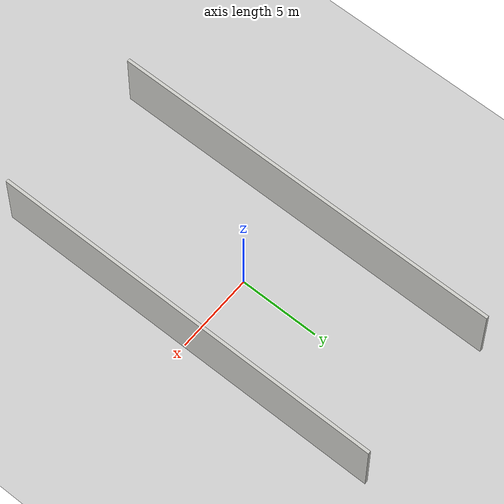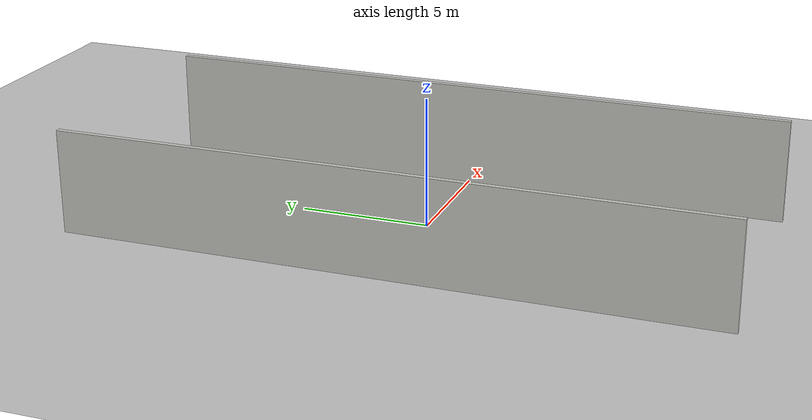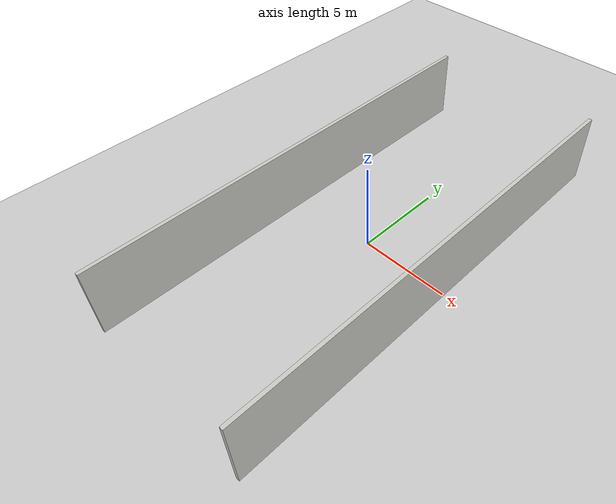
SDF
<?xml version="1.0" ?>
<sdf version="1.5">
  <world name="default">
    <!-- A global light source -->
    <include>
      <uri>model://sun</uri>
    </include>
    <!-- A ground plane -->
    <include>
      <uri>model://ground_plane</uri>
    </include>
    <!-- Own physics settings to speed up simulation -->
    <model name='wall_aerial'>
      <pose frame=''>-5 0 0 0 -0 0</pose>
      <link name='Wall_0'>
        <collision name='Wall_0_Collision'>
          <geometry>
            <box>
              <size>0.2 25 4</size>
            </box>
          </geometry>
          <pose frame=''>0 0 2 0 -0 0</pose>
          <max_contacts>10</max_contacts>
          <surface>
            <contact>
              <ode/>
            </contact>
            <bounce/>
            <friction>
              <torsional>
                <ode/>
              </torsional>
              <ode>
            <mu>0.000</mu>
            <mu2>0.000</mu2>
          </ode>
            </friction>
          </surface>
        </collision>
        <visual name='Wall_0_Visual'>
          <pose frame=''>0 0 2 0 -0 0</pose>
          <geometry>
            <box>
              <size>0.2 25 4</size>
            </box>
          </geometry>
          <material>
            <script>
              <uri>file://media/materials/scripts/gazebo.material</uri>
              <name>Gazebo/CeilingTiled</name>
            </script>
            <ambient>0.760784 0.662745 0.627451 1</ambient>
          </material>
        </visual>
        <pose frame=''>0 0 0 0 -0 0</pose>
        <self_collide>0</self_collide>
        <kinematic>0</kinematic>
        <gravity>1</gravity>
      </link>
      <static>1</static>
    </model>

<!--2nd wall-->

<model name='wall_aerial'>
      <pose frame=''>5 0 0 0 -0 0</pose>
      <link name='Wall_0'>
        <collision name='Wall_0_Collision'>
          <geometry>
            <box>
              <size>0.2 25 4</size>
            </box>
          </geometry>
          <pose frame=''>0 0 2 0 -0 0</pose>
          <max_contacts>10</max_contacts>
          <surface>
            <contact>
              <ode/>
            </contact>
            <bounce/>
            <friction>
              <torsional>
                <ode/>
              </torsional>
              <ode>
            <mu>0.000</mu>
            <mu2>0.000</mu2>
          </ode>
            </friction>
          </surface>
        </collision>
        <visual name='Wall_0_Visual'>
          <pose frame=''>0 0 2 0 -0 0</pose>
          <geometry>
            <box>
              <size>0.2 25 4</size>
            </box>
          </geometry>
          <material>
            <script>
              <uri>file://media/materials/scripts/gazebo.material</uri>
              <name>Gazebo/CeilingTiled</name>
            </script>
            <ambient>0.760784 0.662745 0.627451 1</ambient>
          </material>
        </visual>
        <pose frame=''>0 0 0 0 -0 0</pose>
        <self_collide>0</self_collide>
        <kinematic>0</kinematic>
        <gravity>1</gravity>
      </link>
      <static>1</static>
    </model>

    <!-- Only one ROS interface plugin is required per world, as any other plugin can connect a Gazebo
         topic to a ROS topic (or vise versa). -->

    <physics name='default_physics' default='0' type='ode'>
      <gravity>0 0 0</gravity>
      <ode>
        <solver>
          <type>quick</type>
          <iters>500</iters>
          <sor>1.3</sor>
          <use_dynamic_moi_rescaling>0</use_dynamic_moi_rescaling>
        </solver>
        <constraints>
          <cfm>0</cfm>
          <erp>0.2</erp>
          <contact_max_correcting_vel>100</contact_max_correcting_vel>
          <contact_surface_layer>0.001</contact_surface_layer>
        </constraints>
      </ode>
      <max_step_size>0.001</max_step_size>
      <real_time_factor>1</real_time_factor>
      <real_time_update_rate>1000</real_time_update_rate>
      <magnetic_field>6e-06 2.3e-05 -4.2e-05</magnetic_field>
    </physics>
  </world>
</sdf>
